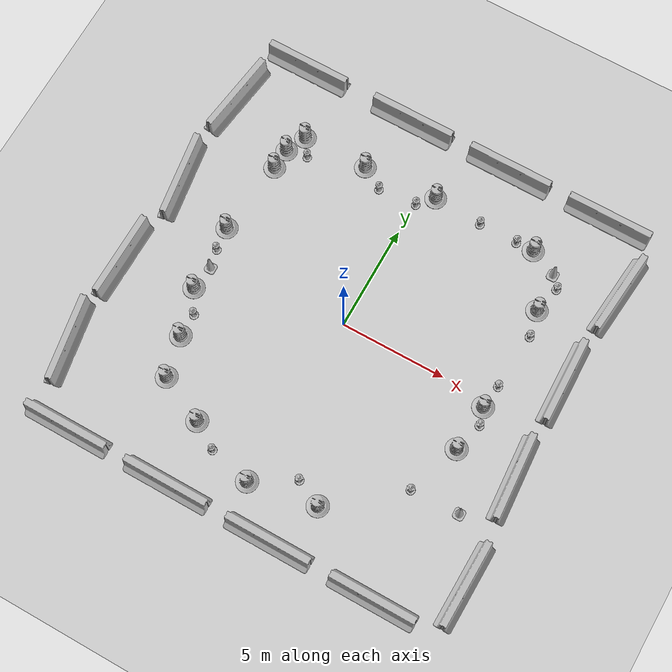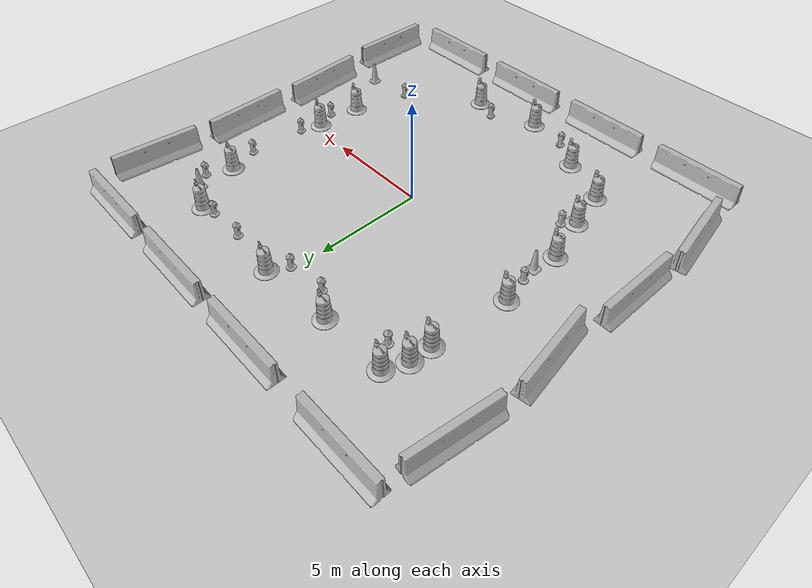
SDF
<sdf version="1.7">
 <world name="default">
  <light name="sun" type="directional">
   <pose>0 0 10 0 -0 0</pose>
   <diffuse>0.8 0.8 0.8 1</diffuse>
   <specular>0.2 0.2 0.2 1</specular>
   <attenuation>
    <range>1000</range>
    <constant>0.9</constant>
    <linear>0.01</linear>
    <quadratic>0.001</quadratic>
   </attenuation>
   <direction>-0.5 0.1 -0.9</direction>
   <spot><inner_angle>0</inner_angle><outer_angle>0</outer_angle><falloff>0</falloff></spot>
  </light>
  <model name="ground_plane">
   <static>1</static>
   <link name="link">
    <collision name="collision">
     <geometry><plane><normal>0 0 1</normal><size>100 100</size></plane></geometry>
     <surface><friction><ode><mu>100</mu><mu2>50</mu2></ode></friction></surface>
    </collision>
    <visual name="visual">
     <cast_shadows>0</cast_shadows>
     <geometry><plane><normal>0 0 1</normal><size>100 100</size></plane></geometry>
     <material>
      <script><uri>file://media/materials/scripts/gazebo.material</uri><name>Gazebo/Grey</name></script>
     </material>
    </visual>
    <velocity_decay><linear>0</linear><angular>0</angular></velocity_decay>
   </link>
  </model>
  <physics type="ode">
   <max_step_size>0.01</max_step_size>
   <real_time_factor>1</real_time_factor>
   <real_time_update_rate>100</real_time_update_rate>
  </physics>
  <scene><ambient>0.4 0.4 0.4 1</ambient><background>0.7 0.7 0.7 1</background><shadows>1</shadows></scene>
  <model name="jersey_barrier">
   <static>1</static>
   <link name="link">
    <visual name="visual">
     <geometry><mesh><uri>model://jersey_barrier/meshes/jersey_barrier.dae</uri></mesh></geometry>
    </visual>
    <collision name="upright">
     <pose>0 0 0.5715 0 -0 0</pose>
     <geometry><box><size>4.06542 0.3063 1.143</size></box></geometry>
    </collision>
    <collision name="base">
     <pose>0 0 0.032258 0 -0 0</pose>
     <geometry><box><size>4.06542 0.8107 0.064516</size></box></geometry>
    </collision>
    <collision name="base2">
     <pose>0 0 0.1 0 -0 0</pose>
     <geometry><box><size>4.06542 0.65 0.1</size></box></geometry>
    </collision>
    <collision name="base3">
     <pose>0 0 0.2 0 -0 0</pose>
     <geometry><box><size>4.06542 0.5 0.1</size></box></geometry>
    </collision>
    <collision name="left-angle">
     <pose>0 -0.224 0.2401 0.9 -0 0</pose>
     <geometry><box><size>4.06542 0.5 0.064516</size></box></geometry>
    </collision>
    <collision name="right-angle">
     <pose>0 0.224 0.2401 -0.9 0 0</pose>
     <geometry><box><size>4.06542 0.5 0.064516</size></box></geometry>
    </collision>
    <velocity_decay><linear>0</linear><angular>0</angular></velocity_decay>
   </link>
   <pose>-8 -10 0 0 -0 0</pose>
  </model>
  <model name="jersey_barrier_0">
   <static>1</static>
   <link name="link">
    <visual name="visual">
     <geometry><mesh><uri>model://jersey_barrier/meshes/jersey_barrier.dae</uri></mesh></geometry>
    </visual>
    <collision name="upright">
     <pose>0 0 0.5715 0 -0 0</pose>
     <geometry><box><size>4.06542 0.3063 1.143</size></box></geometry>
    </collision>
    <collision name="base">
     <pose>0 0 0.032258 0 -0 0</pose>
     <geometry><box><size>4.06542 0.8107 0.064516</size></box></geometry>
    </collision>
    <collision name="base2">
     <pose>0 0 0.1 0 -0 0</pose>
     <geometry><box><size>4.06542 0.65 0.1</size></box></geometry>
    </collision>
    <collision name="base3">
     <pose>0 0 0.2 0 -0 0</pose>
     <geometry><box><size>4.06542 0.5 0.1</size></box></geometry>
    </collision>
    <collision name="left-angle">
     <pose>0 -0.224 0.2401 0.9 -0 0</pose>
     <geometry><box><size>4.06542 0.5 0.064516</size></box></geometry>
    </collision>
    <collision name="right-angle">
     <pose>0 0.224 0.2401 -0.9 0 0</pose>
     <geometry><box><size>4.06542 0.5 0.064516</size></box></geometry>
    </collision>
    <velocity_decay><linear>0</linear><angular>0</angular></velocity_decay>
   </link>
   <pose>-3 -10 0 0 -0 0</pose>
  </model>
  <model name="jersey_barrier_1">
   <static>1</static>
   <link name="link">
    <visual name="visual">
     <geometry><mesh><uri>model://jersey_barrier/meshes/jersey_barrier.dae</uri></mesh></geometry>
    </visual>
    <collision name="upright">
     <pose>0 0 0.5715 0 -0 0</pose>
     <geometry><box><size>4.06542 0.3063 1.143</size></box></geometry>
    </collision>
    <collision name="base">
     <pose>0 0 0.032258 0 -0 0</pose>
     <geometry><box><size>4.06542 0.8107 0.064516</size></box></geometry>
    </collision>
    <collision name="base2">
     <pose>0 0 0.1 0 -0 0</pose>
     <geometry><box><size>4.06542 0.65 0.1</size></box></geometry>
    </collision>
    <collision name="base3">
     <pose>0 0 0.2 0 -0 0</pose>
     <geometry><box><size>4.06542 0.5 0.1</size></box></geometry>
    </collision>
    <collision name="left-angle">
     <pose>0 -0.224 0.2401 0.9 -0 0</pose>
     <geometry><box><size>4.06542 0.5 0.064516</size></box></geometry>
    </collision>
    <collision name="right-angle">
     <pose>0 0.224 0.2401 -0.9 0 0</pose>
     <geometry><box><size>4.06542 0.5 0.064516</size></box></geometry>
    </collision>
    <velocity_decay><linear>0</linear><angular>0</angular></velocity_decay>
   </link>
   <pose>2 -10 0 0 -0 0</pose>
  </model>
  <model name="jersey_barrier_2">
   <static>1</static>
   <link name="link">
    <visual name="visual">
     <geometry><mesh><uri>model://jersey_barrier/meshes/jersey_barrier.dae</uri></mesh></geometry>
    </visual>
    <collision name="upright">
     <pose>0 0 0.5715 0 -0 0</pose>
     <geometry><box><size>4.06542 0.3063 1.143</size></box></geometry>
    </collision>
    <collision name="base">
     <pose>0 0 0.032258 0 -0 0</pose>
     <geometry><box><size>4.06542 0.8107 0.064516</size></box></geometry>
    </collision>
    <collision name="base2">
     <pose>0 0 0.1 0 -0 0</pose>
     <geometry><box><size>4.06542 0.65 0.1</size></box></geometry>
    </collision>
    <collision name="base3">
     <pose>0 0 0.2 0 -0 0</pose>
     <geometry><box><size>4.06542 0.5 0.1</size></box></geometry>
    </collision>
    <collision name="left-angle">
     <pose>0 -0.224 0.2401 0.9 -0 0</pose>
     <geometry><box><size>4.06542 0.5 0.064516</size></box></geometry>
    </collision>
    <collision name="right-angle">
     <pose>0 0.224 0.2401 -0.9 0 0</pose>
     <geometry><box><size>4.06542 0.5 0.064516</size></box></geometry>
    </collision>
    <velocity_decay><linear>0</linear><angular>0</angular></velocity_decay>
   </link>
   <pose>7 -10 0 0 -0 0</pose>
  </model>
  <model name="jersey_barrier_3">
   <static>1</static>
   <link name="link">
    <visual name="visual">
     <geometry><mesh><uri>model://jersey_barrier/meshes/jersey_barrier.dae</uri></mesh></geometry>
    </visual>
    <collision name="upright">
     <pose>0 0 0.5715 0 -0 0</pose>
     <geometry><box><size>4.06542 0.3063 1.143</size></box></geometry>
    </collision>
    <collision name="base">
     <pose>0 0 0.032258 0 -0 0</pose>
     <geometry><box><size>4.06542 0.8107 0.064516</size></box></geometry>
    </collision>
    <collision name="base2">
     <pose>0 0 0.1 0 -0 0</pose>
     <geometry><box><size>4.06542 0.65 0.1</size></box></geometry>
    </collision>
    <collision name="base3">
     <pose>0 0 0.2 0 -0 0</pose>
     <geometry><box><size>4.06542 0.5 0.1</size></box></geometry>
    </collision>
    <collision name="left-angle">
     <pose>0 -0.224 0.2401 0.9 -0 0</pose>
     <geometry><box><size>4.06542 0.5 0.064516</size></box></geometry>
    </collision>
    <collision name="right-angle">
     <pose>0 0.224 0.2401 -0.9 0 0</pose>
     <geometry><box><size>4.06542 0.5 0.064516</size></box></geometry>
    </collision>
    <velocity_decay><linear>0</linear><angular>0</angular></velocity_decay>
   </link>
   <pose>-7.50675 10 0 0 -0 0</pose>
  </model>
  <model name="jersey_barrier_4">
   <static>1</static>
   <link name="link">
    <visual name="visual">
     <geometry><mesh><uri>model://jersey_barrier/meshes/jersey_barrier.dae</uri></mesh></geometry>
    </visual>
    <collision name="upright">
     <pose>0 0 0.5715 0 -0 0</pose>
     <geometry><box><size>4.06542 0.3063 1.143</size></box></geometry>
    </collision>
    <collision name="base">
     <pose>0 0 0.032258 0 -0 0</pose>
     <geometry><box><size>4.06542 0.8107 0.064516</size></box></geometry>
    </collision>
    <collision name="base2">
     <pose>0 0 0.1 0 -0 0</pose>
     <geometry><box><size>4.06542 0.65 0.1</size></box></geometry>
    </collision>
    <collision name="base3">
     <pose>0 0 0.2 0 -0 0</pose>
     <geometry><box><size>4.06542 0.5 0.1</size></box></geometry>
    </collision>
    <collision name="left-angle">
     <pose>0 -0.224 0.2401 0.9 -0 0</pose>
     <geometry><box><size>4.06542 0.5 0.064516</size></box></geometry>
    </collision>
    <collision name="right-angle">
     <pose>0 0.224 0.2401 -0.9 0 0</pose>
     <geometry><box><size>4.06542 0.5 0.064516</size></box></geometry>
    </collision>
    <velocity_decay><linear>0</linear><angular>0</angular></velocity_decay>
   </link>
   <pose>-2 10 0 0 -0 0</pose>
  </model>
  <model name="jersey_barrier_5">
   <static>1</static>
   <link name="link">
    <visual name="visual">
     <geometry><mesh><uri>model://jersey_barrier/meshes/jersey_barrier.dae</uri></mesh></geometry>
    </visual>
    <collision name="upright">
     <pose>0 0 0.5715 0 -0 0</pose>
     <geometry><box><size>4.06542 0.3063 1.143</size></box></geometry>
    </collision>
    <collision name="base">
     <pose>0 0 0.032258 0 -0 0</pose>
     <geometry><box><size>4.06542 0.8107 0.064516</size></box></geometry>
    </collision>
    <collision name="base2">
     <pose>0 0 0.1 0 -0 0</pose>
     <geometry><box><size>4.06542 0.65 0.1</size></box></geometry>
    </collision>
    <collision name="base3">
     <pose>0 0 0.2 0 -0 0</pose>
     <geometry><box><size>4.06542 0.5 0.1</size></box></geometry>
    </collision>
    <collision name="left-angle">
     <pose>0 -0.224 0.2401 0.9 -0 0</pose>
     <geometry><box><size>4.06542 0.5 0.064516</size></box></geometry>
    </collision>
    <collision name="right-angle">
     <pose>0 0.224 0.2401 -0.9 0 0</pose>
     <geometry><box><size>4.06542 0.5 0.064516</size></box></geometry>
    </collision>
    <velocity_decay><linear>0</linear><angular>0</angular></velocity_decay>
   </link>
   <pose>3 10 0 0 -0 0</pose>
  </model>
  <model name="jersey_barrier_6">
   <static>1</static>
   <link name="link">
    <visual name="visual">
     <geometry><mesh><uri>model://jersey_barrier/meshes/jersey_barrier.dae</uri></mesh></geometry>
    </visual>
    <collision name="upright">
     <pose>0 0 0.5715 0 -0 0</pose>
     <geometry><box><size>4.06542 0.3063 1.143</size></box></geometry>
    </collision>
    <collision name="base">
     <pose>0 0 0.032258 0 -0 0</pose>
     <geometry><box><size>4.06542 0.8107 0.064516</size></box></geometry>
    </collision>
    <collision name="base2">
     <pose>0 0 0.1 0 -0 0</pose>
     <geometry><box><size>4.06542 0.65 0.1</size></box></geometry>
    </collision>
    <collision name="base3">
     <pose>0 0 0.2 0 -0 0</pose>
     <geometry><box><size>4.06542 0.5 0.1</size></box></geometry>
    </collision>
    <collision name="left-angle">
     <pose>0 -0.224 0.2401 0.9 -0 0</pose>
     <geometry><box><size>4.06542 0.5 0.064516</size></box></geometry>
    </collision>
    <collision name="right-angle">
     <pose>0 0.224 0.2401 -0.9 0 0</pose>
     <geometry><box><size>4.06542 0.5 0.064516</size></box></geometry>
    </collision>
    <velocity_decay><linear>0</linear><angular>0</angular></velocity_decay>
   </link>
   <pose>8 10 0 0 -0 0</pose>
  </model>
  <model name="jersey_barrier_7">
   <static>1</static>
   <link name="link">
    <visual name="visual">
     <geometry><mesh><uri>model://jersey_barrier/meshes/jersey_barrier.dae</uri></mesh></geometry>
    </visual>
    <collision name="upright">
     <pose>0 0 0.5715 0 -0 0</pose>
     <geometry><box><size>4.06542 0.3063 1.143</size></box></geometry>
    </collision>
    <collision name="base">
     <pose>0 0 0.032258 0 -0 0</pose>
     <geometry><box><size>4.06542 0.8107 0.064516</size></box></geometry>
    </collision>
    <collision name="base2">
     <pose>0 0 0.1 0 -0 0</pose>
     <geometry><box><size>4.06542 0.65 0.1</size></box></geometry>
    </collision>
    <collision name="base3">
     <pose>0 0 0.2 0 -0 0</pose>
     <geometry><box><size>4.06542 0.5 0.1</size></box></geometry>
    </collision>
    <collision name="left-angle">
     <pose>0 -0.224 0.2401 0.9 -0 0</pose>
     <geometry><box><size>4.06542 0.5 0.064516</size></box></geometry>
    </collision>
    <collision name="right-angle">
     <pose>0 0.224 0.2401 -0.9 0 0</pose>
     <geometry><box><size>4.06542 0.5 0.064516</size></box></geometry>
    </collision>
    <velocity_decay><linear>0</linear><angular>0</angular></velocity_decay>
   </link>
   <pose>9.74902 -2.57759 0 0 -0 1.64</pose>
  </model>
  <model name="jersey_barrier_8">
   <static>1</static>
   <link name="link">
    <visual name="visual">
     <geometry><mesh><uri>model://jersey_barrier/meshes/jersey_barrier.dae</uri></mesh></geometry>
    </visual>
    <collision name="upright">
     <pose>0 0 0.5715 0 -0 0</pose>
     <geometry><box><size>4.06542 0.3063 1.143</size></box></geometry>
    </collision>
    <collision name="base">
     <pose>0 0 0.032258 0 -0 0</pose>
     <geometry><box><size>4.06542 0.8107 0.064516</size></box></geometry>
    </collision>
    <collision name="base2">
     <pose>0 0 0.1 0 -0 0</pose>
     <geometry><box><size>4.06542 0.65 0.1</size></box></geometry>
    </collision>
    <collision name="base3">
     <pose>0 0 0.2 0 -0 0</pose>
     <geometry><box><size>4.06542 0.5 0.1</size></box></geometry>
    </collision>
    <collision name="left-angle">
     <pose>0 -0.224 0.2401 0.9 -0 0</pose>
     <geometry><box><size>4.06542 0.5 0.064516</size></box></geometry>
    </collision>
    <collision name="right-angle">
     <pose>0 0.224 0.2401 -0.9 0 0</pose>
     <geometry><box><size>4.06542 0.5 0.064516</size></box></geometry>
    </collision>
    <velocity_decay><linear>0</linear><angular>0</angular></velocity_decay>
   </link>
   <pose>9.70141 2.24369 0 0 -0 1.6</pose>
  </model>
  <model name="jersey_barrier_9">
   <static>1</static>
   <link name="link">
    <visual name="visual">
     <geometry><mesh><uri>model://jersey_barrier/meshes/jersey_barrier.dae</uri></mesh></geometry>
    </visual>
    <collision name="upright">
     <pose>0 0 0.5715 0 -0 0</pose>
     <geometry><box><size>4.06542 0.3063 1.143</size></box></geometry>
    </collision>
    <collision name="base">
     <pose>0 0 0.032258 0 -0 0</pose>
     <geometry><box><size>4.06542 0.8107 0.064516</size></box></geometry>
    </collision>
    <collision name="base2">
     <pose>0 0 0.1 0 -0 0</pose>
     <geometry><box><size>4.06542 0.65 0.1</size></box></geometry>
    </collision>
    <collision name="base3">
     <pose>0 0 0.2 0 -0 0</pose>
     <geometry><box><size>4.06542 0.5 0.1</size></box></geometry>
    </collision>
    <collision name="left-angle">
     <pose>0 -0.224 0.2401 0.9 -0 0</pose>
     <geometry><box><size>4.06542 0.5 0.064516</size></box></geometry>
    </collision>
    <collision name="right-angle">
     <pose>0 0.224 0.2401 -0.9 0 0</pose>
     <geometry><box><size>4.06542 0.5 0.064516</size></box></geometry>
    </collision>
    <velocity_decay><linear>0</linear><angular>0</angular></velocity_decay>
   </link>
   <pose>-10.0607 -6.69856 0 0 0 -1.4</pose>
  </model>
  <model name="jersey_barrier_10">
   <static>1</static>
   <link name="link">
    <visual name="visual">
     <geometry><mesh><uri>model://jersey_barrier/meshes/jersey_barrier.dae</uri></mesh></geometry>
    </visual>
    <collision name="upright">
     <pose>0 0 0.5715 0 -0 0</pose>
     <geometry><box><size>4.06542 0.3063 1.143</size></box></geometry>
    </collision>
    <collision name="base">
     <pose>0 0 0.032258 0 -0 0</pose>
     <geometry><box><size>4.06542 0.8107 0.064516</size></box></geometry>
    </collision>
    <collision name="base2">
     <pose>0 0 0.1 0 -0 0</pose>
     <geometry><box><size>4.06542 0.65 0.1</size></box></geometry>
    </collision>
    <collision name="base3">
     <pose>0 0 0.2 0 -0 0</pose>
     <geometry><box><size>4.06542 0.5 0.1</size></box></geometry>
    </collision>
    <collision name="left-angle">
     <pose>0 -0.224 0.2401 0.9 -0 0</pose>
     <geometry><box><size>4.06542 0.5 0.064516</size></box></geometry>
    </collision>
    <collision name="right-angle">
     <pose>0 0.224 0.2401 -0.9 0 0</pose>
     <geometry><box><size>4.06542 0.5 0.064516</size></box></geometry>
    </collision>
    <velocity_decay><linear>0</linear><angular>0</angular></velocity_decay>
   </link>
   <pose>-10.0774 -2.27159 0 0 -0 1.56</pose>
  </model>
  <model name="jersey_barrier_11">
   <static>1</static>
   <link name="link">
    <visual name="visual">
     <geometry><mesh><uri>model://jersey_barrier/meshes/jersey_barrier.dae</uri></mesh></geometry>
    </visual>
    <collision name="upright">
     <pose>0 0 0.5715 0 -0 0</pose>
     <geometry><box><size>4.06542 0.3063 1.143</size></box></geometry>
    </collision>
    <collision name="base">
     <pose>0 0 0.032258 0 -0 0</pose>
     <geometry><box><size>4.06542 0.8107 0.064516</size></box></geometry>
    </collision>
    <collision name="base2">
     <pose>0 0 0.1 0 -0 0</pose>
     <geometry><box><size>4.06542 0.65 0.1</size></box></geometry>
    </collision>
    <collision name="base3">
     <pose>0 0 0.2 0 -0 0</pose>
     <geometry><box><size>4.06542 0.5 0.1</size></box></geometry>
    </collision>
    <collision name="left-angle">
     <pose>0 -0.224 0.2401 0.9 -0 0</pose>
     <geometry><box><size>4.06542 0.5 0.064516</size></box></geometry>
    </collision>
    <collision name="right-angle">
     <pose>0 0.224 0.2401 -0.9 0 0</pose>
     <geometry><box><size>4.06542 0.5 0.064516</size></box></geometry>
    </collision>
    <velocity_decay><linear>0</linear><angular>0</angular></velocity_decay>
   </link>
   <pose>-9.77013 2.34791 0 0 -0 1.72</pose>
  </model>
  <model name="jersey_barrier_12">
   <static>1</static>
   <link name="link">
    <visual name="visual">
     <geometry><mesh><uri>model://jersey_barrier/meshes/jersey_barrier.dae</uri></mesh></geometry>
    </visual>
    <collision name="upright">
     <pose>0 0 0.5715 0 -0 0</pose>
     <geometry><box><size>4.06542 0.3063 1.143</size></box></geometry>
    </collision>
    <collision name="base">
     <pose>0 0 0.032258 0 -0 0</pose>
     <geometry><box><size>4.06542 0.8107 0.064516</size></box></geometry>
    </collision>
    <collision name="base2">
     <pose>0 0 0.1 0 -0 0</pose>
     <geometry><box><size>4.06542 0.65 0.1</size></box></geometry>
    </collision>
    <collision name="base3">
     <pose>0 0 0.2 0 -0 0</pose>
     <geometry><box><size>4.06542 0.5 0.1</size></box></geometry>
    </collision>
    <collision name="left-angle">
     <pose>0 -0.224 0.2401 0.9 -0 0</pose>
     <geometry><box><size>4.06542 0.5 0.064516</size></box></geometry>
    </collision>
    <collision name="right-angle">
     <pose>0 0.224 0.2401 -0.9 0 0</pose>
     <geometry><box><size>4.06542 0.5 0.064516</size></box></geometry>
    </collision>
    <velocity_decay><linear>0</linear><angular>0</angular></velocity_decay>
   </link>
   <pose>10.0879 -7.62159 0 0 -0 1.56</pose>
  </model>
  <model name="jersey_barrier_13">
   <static>1</static>
   <link name="link">
    <visual name="visual">
     <geometry><mesh><uri>model://jersey_barrier/meshes/jersey_barrier.dae</uri></mesh></geometry>
    </visual>
    <collision name="upright">
     <pose>0 0 0.5715 0 -0 0</pose>
     <geometry><box><size>4.06542 0.3063 1.143</size></box></geometry>
    </collision>
    <collision name="base">
     <pose>0 0 0.032258 0 -0 0</pose>
     <geometry><box><size>4.06542 0.8107 0.064516</size></box></geometry>
    </collision>
    <collision name="base2">
     <pose>0 0 0.1 0 -0 0</pose>
     <geometry><box><size>4.06542 0.65 0.1</size></box></geometry>
    </collision>
    <collision name="base3">
     <pose>0 0 0.2 0 -0 0</pose>
     <geometry><box><size>4.06542 0.5 0.1</size></box></geometry>
    </collision>
    <collision name="left-angle">
     <pose>0 -0.224 0.2401 0.9 -0 0</pose>
     <geometry><box><size>4.06542 0.5 0.064516</size></box></geometry>
    </collision>
    <collision name="right-angle">
     <pose>0 0.224 0.2401 -0.9 0 0</pose>
     <geometry><box><size>4.06542 0.5 0.064516</size></box></geometry>
    </collision>
    <velocity_decay><linear>0</linear><angular>0</angular></velocity_decay>
   </link>
   <pose>10 7 0 0 -0 1.48</pose>
  </model>
  <model name="jersey_barrier_14">
   <static>1</static>
   <link name="link">
    <visual name="visual">
     <geometry><mesh><uri>model://jersey_barrier/meshes/jersey_barrier.dae</uri></mesh></geometry>
    </visual>
    <collision name="upright">
     <pose>0 0 0.5715 0 -0 0</pose>
     <geometry><box><size>4.06542 0.3063 1.143</size></box></geometry>
    </collision>
    <collision name="base">
     <pose>0 0 0.032258 0 -0 0</pose>
     <geometry><box><size>4.06542 0.8107 0.064516</size></box></geometry>
    </collision>
    <collision name="base2">
     <pose>0 0 0.1 0 -0 0</pose>
     <geometry><box><size>4.06542 0.65 0.1</size></box></geometry>
    </collision>
    <collision name="base3">
     <pose>0 0 0.2 0 -0 0</pose>
     <geometry><box><size>4.06542 0.5 0.1</size></box></geometry>
    </collision>
    <collision name="left-angle">
     <pose>0 -0.224 0.2401 0.9 -0 0</pose>
     <geometry><box><size>4.06542 0.5 0.064516</size></box></geometry>
    </collision>
    <collision name="right-angle">
     <pose>0 0.224 0.2401 -0.9 0 0</pose>
     <geometry><box><size>4.06542 0.5 0.064516</size></box></geometry>
    </collision>
    <velocity_decay><linear>0</linear><angular>0</angular></velocity_decay>
   </link>
   <pose>-9.64482 7.05946 0 0 -0 1.44</pose>
  </model>
  <model name="fire_hydrant">
   <static>1</static>
   <link name="link">
    <collision name="collision">
     <geometry><mesh><uri>model://fire_hydrant/meshes/fire_hydrant.dae</uri></mesh></geometry>
    </collision>
    <visual name="visual">
     <geometry><mesh><uri>model://fire_hydrant/meshes/fire_hydrant.dae</uri></mesh></geometry>
    </visual>
    <velocity_decay><linear>0</linear><angular>0</angular></velocity_decay>
   </link>
   <pose>1.81208 -7.08061 0 0 -0 0</pose>
  </model>
  <model name="fire_hydrant_1">
   <static>1</static>
   <link name="link">
    <collision name="collision">
     <geometry><mesh><uri>model://fire_hydrant/meshes/fire_hydrant.dae</uri></mesh></geometry>
    </collision>
    <visual name="visual">
     <geometry><mesh><uri>model://fire_hydrant/meshes/fire_hydrant.dae</uri></mesh></geometry>
    </visual>
    <velocity_decay><linear>0</linear><angular>0</angular></velocity_decay>
   </link>
   <pose>-5.85399 -3.01536 0.408961 0 -0 0</pose>
  </model>
  <model name="Construction Cone">
   <link name="link">
    <collision name="collision">
     <geometry>
      <mesh><scale>10 10 10</scale><uri>model://construction_cone/meshes/construction_cone.dae</uri></mesh>
     </geometry>
    </collision>
    <visual name="visual">
     <geometry>
      <mesh><scale>10 10 10</scale><uri>model://construction_cone/meshes/construction_cone.dae</uri></mesh>
     </geometry>
    </visual>
    <velocity_decay><linear>0</linear><angular>0</angular></velocity_decay>
    <inertial>
     <inertia><ixx>1</ixx><ixy>0</ixy><ixz>0</ixz><iyy>1</iyy><iyz>0</iyz><izz>1</izz></inertia>
     <mass>1</mass>
    </inertial>
   </link>
   <pose>-6.48029 -0.628214 -0 -1e-06 0 0</pose>
   <static>0</static>
  </model>
  <model name="Construction Barrel">
   <link name="link">
    <inertial>
     <pose>0 0 0.4 0 -0 0</pose>
     <mass>500</mass>
     <inertia><ixx>51.2096</ixx><iyy>51.2096</iyy><izz>25</izz><ixy>0</ixy><ixz>0</ixz><iyz>0</iyz></inertia>
    </inertial>
    <collision name="collision">
     <geometry><mesh><uri>model://construction_barrel/meshes/construction_barrel.dae</uri></mesh></geometry>
    </collision>
    <visual name="visual">
     <geometry><mesh><uri>model://construction_barrel/meshes/construction_barrel.dae</uri></mesh></geometry>
    </visual>
    <velocity_decay><linear>0</linear><angular>0</angular></velocity_decay>
   </link>
   <pose>6.99986 -2.54679 -9e-05 0.000308 -0.000178 -0.000775</pose>
   <static>0</static>
  </model>
  <model name="Construction Cone_0">
   <link name="link">
    <collision name="collision">
     <geometry>
      <mesh><scale>10 10 10</scale><uri>model://construction_cone/meshes/construction_cone.dae</uri></mesh>
     </geometry>
    </collision>
    <visual name="visual">
     <geometry>
      <mesh><scale>10 10 10</scale><uri>model://construction_cone/meshes/construction_cone.dae</uri></mesh>
     </geometry>
    </visual>
    <velocity_decay><linear>0</linear><angular>0</angular></velocity_decay>
    <inertial>
     <inertia><ixx>1</ixx><ixy>0</ixy><ixz>0</ixz><iyy>1</iyy><iyz>0</iyz><izz>1</izz></inertia>
     <mass>1</mass>
    </inertial>
   </link>
   <pose>6.99685 6.55732 -0.000979 4e-06 -2e-06 -0.007012</pose>
   <static>0</static>
  </model>
  <model name="Construction Barrel_0">
   <link name="link">
    <inertial>
     <pose>0 0 0.4 0 -0 0</pose>
     <mass>500</mass>
     <inertia><ixx>51.2096</ixx><iyy>51.2096</iyy><izz>25</izz><ixy>0</ixy><ixz>0</ixz><iyz>0</iyz></inertia>
    </inertial>
    <collision name="collision">
     <geometry><mesh><uri>model://construction_barrel/meshes/construction_barrel.dae</uri></mesh></geometry>
    </collision>
    <visual name="visual">
     <geometry><mesh><uri>model://construction_barrel/meshes/construction_barrel.dae</uri></mesh></geometry>
    </visual>
    <velocity_decay><linear>0</linear><angular>0</angular></velocity_decay>
   </link>
   <pose>3.02739 -7.63911 -9e-05 0.000308 -0.000178 -0.001395</pose>
   <static>0</static>
  </model>
  <model name="Construction Barrel_2">
   <link name="link">
    <inertial>
     <pose>0 0 0.4 0 -0 0</pose>
     <mass>500</mass>
     <inertia><ixx>51.2096</ixx><iyy>51.2096</iyy><izz>25</izz><ixy>0</ixy><ixz>0</ixz><iyz>0</iyz></inertia>
    </inertial>
    <collision name="collision">
     <geometry><mesh><uri>model://construction_barrel/meshes/construction_barrel.dae</uri></mesh></geometry>
    </collision>
    <visual name="visual">
     <geometry><mesh><uri>model://construction_barrel/meshes/construction_barrel.dae</uri></mesh></geometry>
    </visual>
    <velocity_decay><linear>0</linear><angular>0</angular></velocity_decay>
   </link>
   <pose>-6.45069 4.99619 -8.8e-05 -8.4e-05 0.000333 0.064013</pose>
   <static>0</static>
  </model>
  <model name="Construction Barrel_3">
   <link name="link">
    <inertial>
     <pose>0 0 0.4 0 -0 0</pose>
     <mass>500</mass>
     <inertia><ixx>51.2096</ixx><iyy>51.2096</iyy><izz>25</izz><ixy>0</ixy><ixz>0</ixz><iyz>0</iyz></inertia>
    </inertial>
    <collision name="collision">
     <geometry><mesh><uri>model://construction_barrel/meshes/construction_barrel.dae</uri></mesh></geometry>
    </collision>
    <visual name="visual">
     <geometry><mesh><uri>model://construction_barrel/meshes/construction_barrel.dae</uri></mesh></geometry>
    </visual>
    <velocity_decay><linear>0</linear><angular>0</angular></velocity_decay>
   </link>
   <pose>-6.40215 6.01045 -9.1e-05 0.00031 -0.000179 -0.122816</pose>
   <static>0</static>
  </model>
  <model name="Construction Barrel_4">
   <link name="link">
    <inertial>
     <pose>0 0 0.4 0 -0 0</pose>
     <mass>500</mass>
     <inertia><ixx>51.2096</ixx><iyy>51.2096</iyy><izz>25</izz><ixy>0</ixy><ixz>0</ixz><iyz>0</iyz></inertia>
    </inertial>
    <collision name="collision">
     <geometry><mesh><uri>model://construction_barrel/meshes/construction_barrel.dae</uri></mesh></geometry>
    </collision>
    <visual name="visual">
     <geometry><mesh><uri>model://construction_barrel/meshes/construction_barrel.dae</uri></mesh></geometry>
    </visual>
    <velocity_decay><linear>0</linear><angular>0</angular></velocity_decay>
   </link>
   <pose>-5.96852 6.98407 -8.8e-05 -8e-05 0.000332 -0.052731</pose>
   <static>0</static>
  </model>
  <model name="Construction Barrel_7">
   <link name="link">
    <inertial>
     <pose>0 0 0.4 0 -0 0</pose>
     <mass>500</mass>
     <inertia><ixx>51.2096</ixx><iyy>51.2096</iyy><izz>25</izz><ixy>0</ixy><ixz>0</ixz><iyz>0</iyz></inertia>
    </inertial>
    <collision name="collision">
     <geometry><mesh><uri>model://construction_barrel/meshes/construction_barrel.dae</uri></mesh></geometry>
    </collision>
    <visual name="visual">
     <geometry><mesh><uri>model://construction_barrel/meshes/construction_barrel.dae</uri></mesh></geometry>
    </visual>
    <velocity_decay><linear>0</linear><angular>0</angular></velocity_decay>
   </link>
   <pose>-2.84739 7.04456 -9.1e-05 0.000308 -0.000178 -0.011568</pose>
   <static>0</static>
  </model>
  <model name="Construction Cone_1">
   <link name="link">
    <collision name="collision">
     <geometry>
      <mesh><scale>10 10 10</scale><uri>model://construction_cone/meshes/construction_cone.dae</uri></mesh>
     </geometry>
    </collision>
    <visual name="visual">
     <geometry>
      <mesh><scale>10 10 10</scale><uri>model://construction_cone/meshes/construction_cone.dae</uri></mesh>
     </geometry>
    </visual>
    <velocity_decay><linear>0</linear><angular>0</angular></velocity_decay>
    <inertial>
     <inertia><ixx>1</ixx><ixy>0</ixy><ixz>0</ixz><iyy>1</iyy><iyz>0</iyz><izz>1</izz></inertia>
     <mass>1</mass>
    </inertial>
   </link>
   <pose>8.42887 -5 -0 -1e-06 0 0</pose>
   <static>0</static>
  </model>
  <gravity>0 0 -9.8</gravity>
  <magnetic_field>6e-06 2.3e-05 -4.2e-05</magnetic_field>
  <atmosphere type="adiabatic"/>
  <spherical_coordinates>
   <surface_model>EARTH_WGS84</surface_model>
   <latitude_deg>0</latitude_deg>
   <longitude_deg>0</longitude_deg>
   <elevation>0</elevation>
   <heading_deg>0</heading_deg>
  </spherical_coordinates>
  <model name="Construction Barrel_clone">
   <link name="link">
    <inertial>
     <pose>0 0 0.4 0 -0 0</pose>
     <mass>500</mass>
     <inertia><ixx>51.2096</ixx><iyy>51.2096</iyy><izz>25</izz><ixy>0</ixy><ixz>0</ixz><iyz>0</iyz></inertia>
    </inertial>
    <collision name="collision">
     <geometry><mesh><uri>model://construction_barrel/meshes/construction_barrel.dae</uri></mesh></geometry>
    </collision>
    <visual name="visual">
     <geometry><mesh><uri>model://construction_barrel/meshes/construction_barrel.dae</uri></mesh></geometry>
    </visual>
    <velocity_decay><linear>0</linear><angular>0</angular></velocity_decay>
   </link>
   <pose>7.12309 -0.333508 -9e-05 0.000308 -0.000178 -0.000776</pose>
   <static>0</static>
  </model>
  <model name="Construction Barrel_clone_1">
   <link name="link">
    <inertial>
     <pose>0 0 0.4 0 -0 0</pose>
     <mass>500</mass>
     <inertia><ixx>51.2096</ixx><iyy>51.2096</iyy><izz>25</izz><ixy>0</ixy><ixz>0</ixz><iyz>0</iyz></inertia>
    </inertial>
    <collision name="collision">
     <geometry><mesh><uri>model://construction_barrel/meshes/construction_barrel.dae</uri></mesh></geometry>
    </collision>
    <visual name="visual">
     <geometry><mesh><uri>model://construction_barrel/meshes/construction_barrel.dae</uri></mesh></geometry>
    </visual>
    <velocity_decay><linear>0</linear><angular>0</angular></velocity_decay>
   </link>
   <pose>7.14093 4.74637 -9e-05 0.000308 -0.000178 -0.000764</pose>
   <static>0</static>
  </model>
  <model name="Construction Barrel_clone_2">
   <link name="link">
    <inertial>
     <pose>0 0 0.4 0 -0 0</pose>
     <mass>500</mass>
     <inertia><ixx>51.2096</ixx><iyy>51.2096</iyy><izz>25</izz><ixy>0</ixy><ixz>0</ixz><iyz>0</iyz></inertia>
    </inertial>
    <collision name="collision">
     <geometry><mesh><uri>model://construction_barrel/meshes/construction_barrel.dae</uri></mesh></geometry>
    </collision>
    <visual name="visual">
     <geometry><mesh><uri>model://construction_barrel/meshes/construction_barrel.dae</uri></mesh></geometry>
    </visual>
    <velocity_decay><linear>0</linear><angular>0</angular></velocity_decay>
   </link>
   <pose>5.70279 7.18278 -8.8e-05 -8.2e-05 0.000332 -0.000762</pose>
   <static>0</static>
  </model>
  <model name="Construction Barrel_clone_5">
   <link name="link">
    <inertial>
     <pose>0 0 0.4 0 -0 0</pose>
     <mass>500</mass>
     <inertia><ixx>51.2096</ixx><iyy>51.2096</iyy><izz>25</izz><ixy>0</ixy><ixz>0</ixz><iyz>0</iyz></inertia>
    </inertial>
    <collision name="collision">
     <geometry><mesh><uri>model://construction_barrel/meshes/construction_barrel.dae</uri></mesh></geometry>
    </collision>
    <visual name="visual">
     <geometry><mesh><uri>model://construction_barrel/meshes/construction_barrel.dae</uri></mesh></geometry>
    </visual>
    <velocity_decay><linear>0</linear><angular>0</angular></velocity_decay>
   </link>
   <pose>0.679353 7.27664 -8.8e-05 -8.2e-05 0.000332 -0.000766</pose>
   <static>0</static>
  </model>
  <model name="Construction Barrel_clone_7">
   <link name="link">
    <inertial>
     <pose>0 0 0.4 0 -0 0</pose>
     <mass>500</mass>
     <inertia><ixx>51.2096</ixx><iyy>51.2096</iyy><izz>25</izz><ixy>0</ixy><ixz>0</ixz><iyz>0</iyz></inertia>
    </inertial>
    <collision name="collision">
     <geometry><mesh><uri>model://construction_barrel/meshes/construction_barrel.dae</uri></mesh></geometry>
    </collision>
    <visual name="visual">
     <geometry><mesh><uri>model://construction_barrel/meshes/construction_barrel.dae</uri></mesh></geometry>
    </visual>
    <velocity_decay><linear>0</linear><angular>0</angular></velocity_decay>
   </link>
   <pose>-0.133471 -8.19636 -8.8e-05 -8.2e-05 0.000332 -0.000763</pose>
   <static>0</static>
  </model>
  <model name="fire_hydrant_clone">
   <static>1</static>
   <link name="link">
    <collision name="collision">
     <geometry><mesh><uri>model://fire_hydrant/meshes/fire_hydrant.dae</uri></mesh></geometry>
    </collision>
    <visual name="visual">
     <geometry><mesh><uri>model://fire_hydrant/meshes/fire_hydrant.dae</uri></mesh></geometry>
    </visual>
    <velocity_decay><linear>0</linear><angular>0</angular></velocity_decay>
   </link>
   <pose>-2.0976 -7.77071 0 0 -0 0</pose>
  </model>
  <model name="fire_hydrant_clone_0">
   <static>1</static>
   <link name="link">
    <collision name="collision">
     <geometry><mesh><uri>model://fire_hydrant/meshes/fire_hydrant.dae</uri></mesh></geometry>
    </collision>
    <visual name="visual">
     <geometry><mesh><uri>model://fire_hydrant/meshes/fire_hydrant.dae</uri></mesh></geometry>
    </visual>
    <velocity_decay><linear>0</linear><angular>0</angular></velocity_decay>
   </link>
   <pose>6.15134 -5.12671 0 0 -0 0</pose>
  </model>
  <model name="fire_hydrant_clone_1">
   <static>1</static>
   <link name="link">
    <collision name="collision">
     <geometry><mesh><uri>model://fire_hydrant/meshes/fire_hydrant.dae</uri></mesh></geometry>
    </collision>
    <visual name="visual">
     <geometry><mesh><uri>model://fire_hydrant/meshes/fire_hydrant.dae</uri></mesh></geometry>
    </visual>
    <velocity_decay><linear>0</linear><angular>0</angular></velocity_decay>
   </link>
   <pose>7.38832 -1.19554 0 0 -0 0</pose>
  </model>
  <model name="fire_hydrant_clone_2">
   <static>1</static>
   <link name="link">
    <collision name="collision">
     <geometry><mesh><uri>model://fire_hydrant/meshes/fire_hydrant.dae</uri></mesh></geometry>
    </collision>
    <visual name="visual">
     <geometry><mesh><uri>model://fire_hydrant/meshes/fire_hydrant.dae</uri></mesh></geometry>
    </visual>
    <velocity_decay><linear>0</linear><angular>0</angular></velocity_decay>
   </link>
   <pose>7.27439 0.746665 0 0 -0 0</pose>
  </model>
  <model name="fire_hydrant_clone_3">
   <static>1</static>
   <link name="link">
    <collision name="collision">
     <geometry><mesh><uri>model://fire_hydrant/meshes/fire_hydrant.dae</uri></mesh></geometry>
    </collision>
    <visual name="visual">
     <geometry><mesh><uri>model://fire_hydrant/meshes/fire_hydrant.dae</uri></mesh></geometry>
    </visual>
    <velocity_decay><linear>0</linear><angular>0</angular></velocity_decay>
   </link>
   <pose>7.42836 3.43872 0 0 -0 0</pose>
  </model>
  <model name="fire_hydrant_clone_4">
   <static>1</static>
   <link name="link">
    <collision name="collision">
     <geometry><mesh><uri>model://fire_hydrant/meshes/fire_hydrant.dae</uri></mesh></geometry>
    </collision>
    <visual name="visual">
     <geometry><mesh><uri>model://fire_hydrant/meshes/fire_hydrant.dae</uri></mesh></geometry>
    </visual>
    <velocity_decay><linear>0</linear><angular>0</angular></velocity_decay>
   </link>
   <pose>7.45325 5.97696 0 0 -0 0</pose>
  </model>
  <model name="fire_hydrant_clone_5">
   <static>1</static>
   <link name="link">
    <collision name="collision">
     <geometry><mesh><uri>model://fire_hydrant/meshes/fire_hydrant.dae</uri></mesh></geometry>
    </collision>
    <visual name="visual">
     <geometry><mesh><uri>model://fire_hydrant/meshes/fire_hydrant.dae</uri></mesh></geometry>
    </visual>
    <velocity_decay><linear>0</linear><angular>0</angular></velocity_decay>
   </link>
   <pose>4.8759 7.0867 0 0 -0 0</pose>
  </model>
  <model name="fire_hydrant_clone_6">
   <static>1</static>
   <link name="link">
    <collision name="collision">
     <geometry><mesh><uri>model://fire_hydrant/meshes/fire_hydrant.dae</uri></mesh></geometry>
    </collision>
    <visual name="visual">
     <geometry><mesh><uri>model://fire_hydrant/meshes/fire_hydrant.dae</uri></mesh></geometry>
    </visual>
    <velocity_decay><linear>0</linear><angular>0</angular></velocity_decay>
   </link>
   <pose>3.03943 7.07484 0 0 -0 0</pose>
  </model>
  <model name="fire_hydrant_clone_7">
   <static>1</static>
   <link name="link">
    <collision name="collision">
     <geometry><mesh><uri>model://fire_hydrant/meshes/fire_hydrant.dae</uri></mesh></geometry>
    </collision>
    <visual name="visual">
     <geometry><mesh><uri>model://fire_hydrant/meshes/fire_hydrant.dae</uri></mesh></geometry>
    </visual>
    <velocity_decay><linear>0</linear><angular>0</angular></velocity_decay>
   </link>
   <pose>0.065637 6.49282 0 0 -0 0</pose>
  </model>
  <model name="fire_hydrant_clone_8">
   <static>1</static>
   <link name="link">
    <collision name="collision">
     <geometry><mesh><uri>model://fire_hydrant/meshes/fire_hydrant.dae</uri></mesh></geometry>
    </collision>
    <visual name="visual">
     <geometry><mesh><uri>model://fire_hydrant/meshes/fire_hydrant.dae</uri></mesh></geometry>
    </visual>
    <velocity_decay><linear>0</linear><angular>0</angular></velocity_decay>
   </link>
   <pose>-1.74959 6.33766 0 0 -0 0</pose>
  </model>
  <model name="fire_hydrant_clone_9">
   <static>1</static>
   <link name="link">
    <collision name="collision">
     <geometry><mesh><uri>model://fire_hydrant/meshes/fire_hydrant.dae</uri></mesh></geometry>
    </collision>
    <visual name="visual">
     <geometry><mesh><uri>model://fire_hydrant/meshes/fire_hydrant.dae</uri></mesh></geometry>
    </visual>
    <velocity_decay><linear>0</linear><angular>0</angular></velocity_decay>
   </link>
   <pose>-5.37247 6.12464 0 0 -0 0</pose>
  </model>
  <model name="fire_hydrant_clone_10">
   <static>1</static>
   <link name="link">
    <collision name="collision">
     <geometry><mesh><uri>model://fire_hydrant/meshes/fire_hydrant.dae</uri></mesh></geometry>
    </collision>
    <visual name="visual">
     <geometry><mesh><uri>model://fire_hydrant/meshes/fire_hydrant.dae</uri></mesh></geometry>
    </visual>
    <velocity_decay><linear>0</linear><angular>0</angular></velocity_decay>
   </link>
   <pose>-6.65764 0.217644 0 0 -0 0</pose>
  </model>
  <model name="Construction Barrel_clone_7_clone">
   <link name="link">
    <inertial>
     <pose>0 0 0.4 0 -0 0</pose>
     <mass>500</mass>
     <inertia><ixx>51.2096</ixx><iyy>51.2096</iyy><izz>25</izz><ixy>0</ixy><ixz>0</ixz><iyz>0</iyz></inertia>
    </inertial>
    <collision name="collision">
     <geometry><mesh><uri>model://construction_barrel/meshes/construction_barrel.dae</uri></mesh></geometry>
    </collision>
    <visual name="visual">
     <geometry><mesh><uri>model://construction_barrel/meshes/construction_barrel.dae</uri></mesh></geometry>
    </visual>
    <velocity_decay><linear>0</linear><angular>0</angular></velocity_decay>
   </link>
   <pose>-3.36501 -6.96042 -8.8e-05 -8.2e-05 0.000332 -0.000766</pose>
   <static>0</static>
  </model>
  <model name="Construction Barrel_clone_7_clone_1">
   <link name="link">
    <inertial>
     <pose>0 0 0.4 0 -0 0</pose>
     <mass>500</mass>
     <inertia><ixx>51.2096</ixx><iyy>51.2096</iyy><izz>25</izz><ixy>0</ixy><ixz>0</ixz><iyz>0</iyz></inertia>
    </inertial>
    <collision name="collision">
     <geometry><mesh><uri>model://construction_barrel/meshes/construction_barrel.dae</uri></mesh></geometry>
    </collision>
    <visual name="visual">
     <geometry><mesh><uri>model://construction_barrel/meshes/construction_barrel.dae</uri></mesh></geometry>
    </visual>
    <velocity_decay><linear>0</linear><angular>0</angular></velocity_decay>
   </link>
   <pose>-5.55481 -5.91999 -8.8e-05 -8.2e-05 0.000332 -0.000749</pose>
   <static>0</static>
  </model>
  <model name="Construction Barrel_clone_7_clone_2">
   <link name="link">
    <inertial>
     <pose>0 0 0.4 0 -0 0</pose>
     <mass>500</mass>
     <inertia><ixx>51.2096</ixx><iyy>51.2096</iyy><izz>25</izz><ixy>0</ixy><ixz>0</ixz><iyz>0</iyz></inertia>
    </inertial>
    <collision name="collision">
     <geometry><mesh><uri>model://construction_barrel/meshes/construction_barrel.dae</uri></mesh></geometry>
    </collision>
    <visual name="visual">
     <geometry><mesh><uri>model://construction_barrel/meshes/construction_barrel.dae</uri></mesh></geometry>
    </visual>
    <velocity_decay><linear>0</linear><angular>0</angular></velocity_decay>
   </link>
   <pose>-6.00013 -4.00032 -9e-05 0.000308 -0.000178 -0.000761</pose>
   <static>0</static>
  </model>
  <model name="Construction Barrel_clone_7_clone_3">
   <link name="link">
    <inertial>
     <pose>0 0 0.4 0 -0 0</pose>
     <mass>500</mass>
     <inertia><ixx>51.2096</ixx><iyy>51.2096</iyy><izz>25</izz><ixy>0</ixy><ixz>0</ixz><iyz>0</iyz></inertia>
    </inertial>
    <collision name="collision">
     <geometry><mesh><uri>model://construction_barrel/meshes/construction_barrel.dae</uri></mesh></geometry>
    </collision>
    <visual name="visual">
     <geometry><mesh><uri>model://construction_barrel/meshes/construction_barrel.dae</uri></mesh></geometry>
    </visual>
    <velocity_decay><linear>0</linear><angular>0</angular></velocity_decay>
   </link>
   <pose>-6.64742 -1.79875 -8.8e-05 -8.2e-05 0.000332 -0.000754</pose>
   <static>0</static>
  </model>
  <model name="Construction Barrel_clone_7_clone_4">
   <link name="link">
    <inertial>
     <pose>0 0 0.4 0 -0 0</pose>
     <mass>500</mass>
     <inertia><ixx>51.2096</ixx><iyy>51.2096</iyy><izz>25</izz><ixy>0</ixy><ixz>0</ixz><iyz>0</iyz></inertia>
    </inertial>
    <collision name="collision">
     <geometry><mesh><uri>model://construction_barrel/meshes/construction_barrel.dae</uri></mesh></geometry>
    </collision>
    <visual name="visual">
     <geometry><mesh><uri>model://construction_barrel/meshes/construction_barrel.dae</uri></mesh></geometry>
    </visual>
    <velocity_decay><linear>0</linear><angular>0</angular></velocity_decay>
   </link>
   <pose>-6.83431 1.38078 -9e-05 0.000308 -0.000178 -0.000757</pose>
   <static>0</static>
  </model>
 </world>
</sdf>
